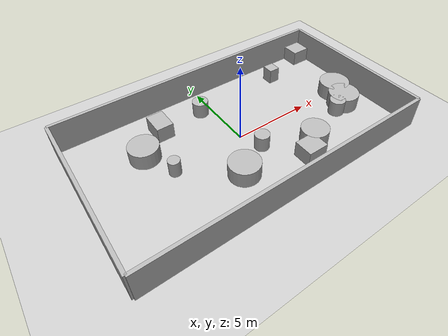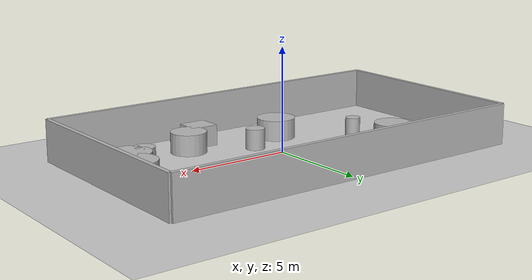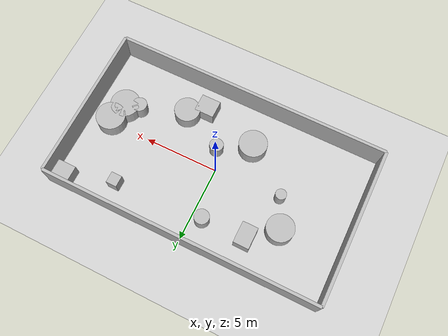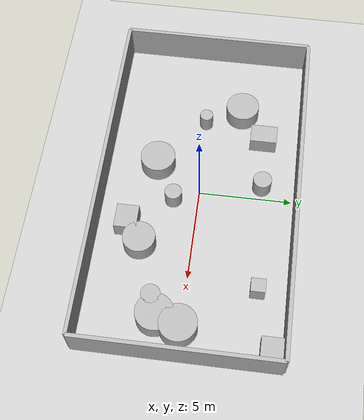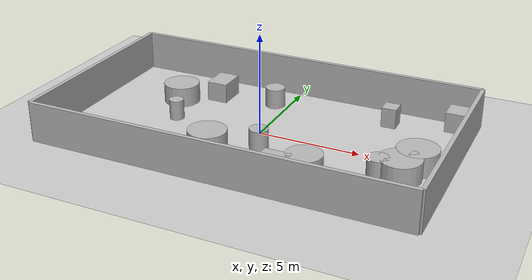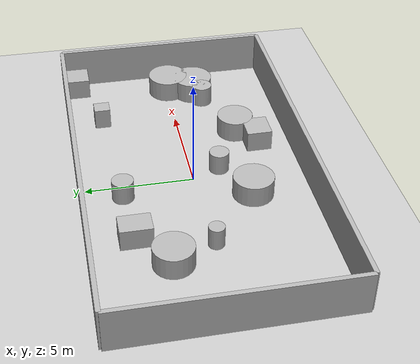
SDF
<?xml version="1.0"?>
<sdf version="1.6">
  <world name="env_73">

    <include><uri>model://ground_plane</uri></include>
    <include><uri>model://sun</uri></include>

    <!-- WALLS -->
    <model name="wall_north"><static>true</static><pose>0 5.224177473924389 1 0 0 0</pose>
      <link name="link"><collision name="collision">
        <geometry><box><size>18.606781525765285 0.2 2</size></box></geometry>
      </collision><visual name="visual">
        <geometry><box><size>18.606781525765285 0.2 2</size></box></geometry>
      </visual></link>
    </model>

    <model name="wall_south"><static>true</static><pose>0 -5.224177473924389 1 0 0 0</pose>
      <link name="link"><collision name="collision">
        <geometry><box><size>18.606781525765285 0.2 2</size></box></geometry>
      </collision><visual name="visual">
        <geometry><box><size>18.606781525765285 0.2 2</size></box></geometry>
      </visual></link>
    </model>

    <model name="wall_east"><static>true</static><pose>9.303390762882643 0 1 0 0 1.57</pose>
      <link name="link"><collision name="collision">
        <geometry><box><size>10.448354947848777 0.2 2</size></box></geometry>
      </collision><visual name="visual">
        <geometry><box><size>10.448354947848777 0.2 2</size></box></geometry>
      </visual></link>
    </model>

    <model name="wall_west"><static>true</static><pose>-9.303390762882643 0 1 0 0 1.57</pose>
      <link name="link"><collision name="collision">
        <geometry><box><size>10.448354947848777 0.2 2</size></box></geometry>
      </collision><visual name="visual">
        <geometry><box><size>10.448354947848777 0.2 2</size></box></geometry>
      </visual></link>
    </model>

    <!-- SENSOR -->

    <model name="lidar_sensor">
      <static>true</static>
      <pose>8.730526353725786 -4.400467506480665 0.4 0 0 0</pose>
      <link name="link">
        <sensor name="lidar" type="ray">
          <pose>0 0 0 0 0 0</pose>
          <visualize>true</visualize>
          <always_on>true</always_on>
          <update_rate>10</update_rate>
          <ray>
            <scan><horizontal>
              <samples>120</samples>
              <resolution>1</resolution>
              <min_angle>-3.14159</min_angle>
              <max_angle>3.14159</max_angle>
            </horizontal></scan>
            <range><min>0.15</min><max>20.0</max><resolution>0.01</resolution></range>
          </ray>
          <plugin name="lidar_plugin" filename="liblidar_plugin.so"/>
        </sensor>
      </link>
    </model>

    <!-- OBSTACLES -->

    <model name="obstacle_0">
      <static>true</static>
      <pose>3.411687720015866 -2.73214296258437 0.5 0 0 0</pose>
      <link name="link">
        <collision name="collision">
          <geometry><cylinder><radius>0.86</radius><length>1.0</length></cylinder></geometry>
        </collision>
        <visual name="visual">
          <geometry><cylinder><radius>0.86</radius><length>1.0</length></cylinder></geometry>
        </visual>
      </link>
    </model>

    <model name="obstacle_1">
      <static>true</static>
      <pose>2.31859136651185 -3.559123860691927 0.5 0 0 0</pose>
      <link name="link">
        <collision name="collision">
          <geometry><box><size>1.31 1.19 1.0</size></box></geometry>
        </collision>
        <visual name="visual">
          <geometry><box><size>1.31 1.19 1.0</size></box></geometry>
        </visual>
      </link>
    </model>

    <model name="obstacle_2">
      <static>true</static>
      <pose>-0.7158999334637173 3.335791178024696 0.5 0 0 0</pose>
      <link name="link">
        <collision name="collision">
          <geometry><cylinder><radius>0.5</radius><length>1.0</length></cylinder></geometry>
        </collision>
        <visual name="visual">
          <geometry><cylinder><radius>0.5</radius><length>1.0</length></cylinder></geometry>
        </visual>
      </link>
    </model>

    <model name="obstacle_3">
      <static>true</static>
      <pose>7.7287389034368665 -0.10370460116429925 0.5 0 0 0</pose>
      <link name="link">
        <collision name="collision">
          <geometry><cylinder><radius>0.98</radius><length>1.0</length></cylinder></geometry>
        </collision>
        <visual name="visual">
          <geometry><cylinder><radius>0.98</radius><length>1.0</length></cylinder></geometry>
        </visual>
      </link>
    </model>

    <model name="obstacle_4">
      <static>true</static>
      <pose>-4.509726344531686 -0.13755889192347404 0.5 0 0 0</pose>
      <link name="link">
        <collision name="collision">
          <geometry><cylinder><radius>0.36</radius><length>1.0</length></cylinder></geometry>
        </collision>
        <visual name="visual">
          <geometry><cylinder><radius>0.36</radius><length>1.0</length></cylinder></geometry>
        </visual>
      </link>
    </model>

    <model name="obstacle_5">
      <static>true</static>
      <pose>7.314833442152878 -1.3397650456943428 0.5 0 0 0</pose>
      <link name="link">
        <collision name="collision">
          <geometry><cylinder><radius>0.98</radius><length>1.0</length></cylinder></geometry>
        </collision>
        <visual name="visual">
          <geometry><cylinder><radius>0.98</radius><length>1.0</length></cylinder></geometry>
        </visual>
      </link>
    </model>

    <model name="obstacle_6">
      <static>true</static>
      <pose>-3.6359381725605235 3.1722963555727386 0.5 0 0 0</pose>
      <link name="link">
        <collision name="collision">
          <geometry><box><size>1.05 1.45 1.0</size></box></geometry>
        </collision>
        <visual name="visual">
          <geometry><box><size>1.05 1.45 1.0</size></box></geometry>
        </visual>
      </link>
    </model>

    <model name="obstacle_7">
      <static>true</static>
      <pose>6.41545837393193 -1.6608946221075 0.5 0 0 0</pose>
      <link name="link">
        <collision name="collision">
          <geometry><cylinder><radius>0.5</radius><length>1.0</length></cylinder></geometry>
        </collision>
        <visual name="visual">
          <geometry><cylinder><radius>0.5</radius><length>1.0</length></cylinder></geometry>
        </visual>
      </link>
    </model>

    <model name="obstacle_8">
      <static>true</static>
      <pose>-1.5153555727864934 -2.46170615467664 0.5 0 0 0</pose>
      <link name="link">
        <collision name="collision">
          <geometry><cylinder><radius>0.94</radius><length>1.0</length></cylinder></geometry>
        </collision>
        <visual name="visual">
          <geometry><cylinder><radius>0.94</radius><length>1.0</length></cylinder></geometry>
        </visual>
      </link>
    </model>

    <model name="obstacle_9">
      <static>true</static>
      <pose>0.5731701198975383 -1.3346064377042604 0.5 0 0 0</pose>
      <link name="link">
        <collision name="collision">
          <geometry><cylinder><radius>0.46</radius><length>1.0</length></cylinder></geometry>
        </collision>
        <visual name="visual">
          <geometry><cylinder><radius>0.46</radius><length>1.0</length></cylinder></geometry>
        </visual>
      </link>
    </model>

    <model name="obstacle_10">
      <static>true</static>
      <pose>-5.350934616940445 1.8314581971141202 0.5 0 0 0</pose>
      <link name="link">
        <collision name="collision">
          <geometry><cylinder><radius>0.91</radius><length>1.0</length></cylinder></geometry>
        </collision>
        <visual name="visual">
          <geometry><cylinder><radius>0.91</radius><length>1.0</length></cylinder></geometry>
        </visual>
      </link>
    </model>

    <model name="obstacle_11">
      <static>true</static>
      <pose>8.511919858794311 4.583624925791643 0.5 0 0 0</pose>
      <link name="link">
        <collision name="collision">
          <geometry><box><size>1.23 1.16 1.0</size></box></geometry>
        </collision>
        <visual name="visual">
          <geometry><box><size>1.23 1.16 1.0</size></box></geometry>
        </visual>
      </link>
    </model>

    <model name="obstacle_12">
      <static>true</static>
      <pose>5.325993398645421 3.6240521310998552 0.5 0 0 0</pose>
      <link name="link">
        <collision name="collision">
          <geometry><box><size>0.73 0.76 1.0</size></box></geometry>
        </collision>
        <visual name="visual">
          <geometry><box><size>0.73 0.76 1.0</size></box></geometry>
        </visual>
      </link>
    </model>

  </world>
</sdf>
